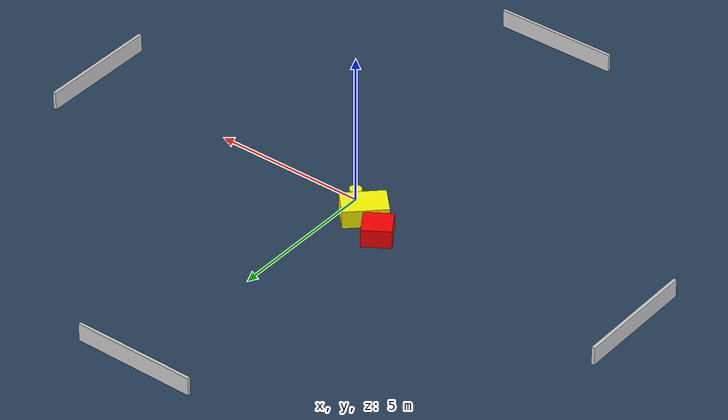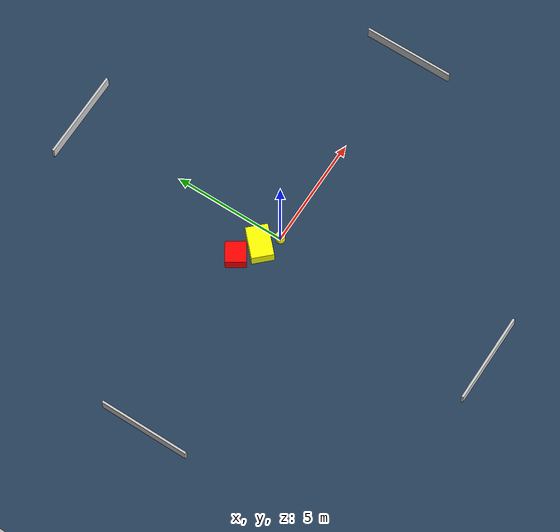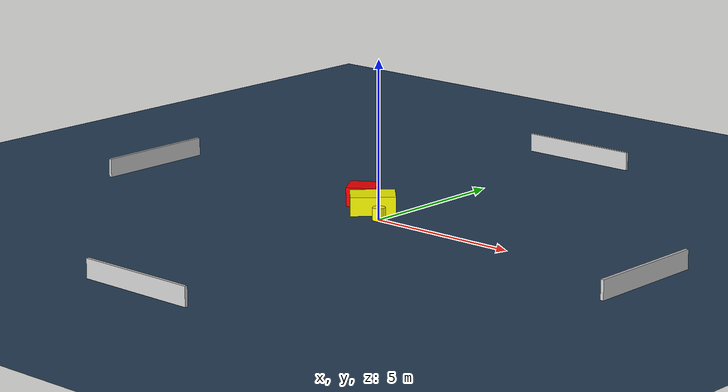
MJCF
<?xml version="1.0" ?>
<mujoco model="generated_environment">
  <option timestep="0.01" integrator="RK4" cone="elliptic"/>
  <default>
    <geom density="1"/>
  </default>
  <asset>
    <texture builtin="gradient" height="3072" name="skybox" rgb1="0.3 0.5 0.7" rgb2="0 0 0" type="skybox" width="512"/>
    <texture builtin="checker" height="300" name="groundplane" rgb1="0.2 0.3 0.4" rgb2="0.1 0.2 0.3" type="2d" width="300"/>
    <material name="groundplane" reflectance="0.2" texrepeat="5 5" texture="groundplane"/>
  </asset>
  <worldbody>
    <light dir="0 0 -1" directional="true" pos="0 0 1.5"/>
    <geom condim="3" friction="0.5 0.005 0.001" material="groundplane" name="floor" pos="0 0 0" size="0 0 0.05" type="plane"/>
    <body name="walls">
      <geom name="wall_1" condim="4" pos="-10.0 0.0 0.3" rgba="0.800000011920929 0.800000011920929 0.800000011920929 1.0" size="0.05 2.0 0.3" type="box"/>
      <geom name="wall_2" condim="4" pos="10.0 0.0 0.3" rgba="0.800000011920929 0.800000011920929 0.800000011920929 1.0" size="0.05 2.0 0.3" type="box"/>
      <geom name="wall_3" condim="4" pos="0.0 -10.0 0.3" rgba="0.800000011920929 0.800000011920929 0.800000011920929 1.0" size="2.0 0.05 0.3" type="box"/>
      <geom name="wall_4" condim="4" pos="0.0 10.0 0.3" rgba="0.800000011920929 0.800000011920929 0.800000011920929 1.0" size="2.0 0.05 0.3" type="box"/>
    </body>
    <body name="robot">
      <joint name="joint_x" type="slide" pos="0 0 0" axis="1 0 0"/>
      <joint name="joint_y" type="slide" pos="0 0 0" axis="0 1 0"/>
      <geom name="robot" type="cylinder" pos="0.0 0.0 0.2" size="0.2 0.2 0.0" mass="5.0" friction="1.0 0.005 0.0001" condim="4" rgba="1.0 1.0 0.0 1.0"/>
    </body>
    <body name="obstacle_1_movable">
      <geom name="obstacle_1_movable" condim="4" pos="-0.7396740442221643 0.5349412777581007 0.3" euler="0 0 223.8806870638306" friction="0.0 0.005 0.001" rgba="1.0 1.0 0.0 1.0" size="0.7059565159082846 0.4823209367147605 0.3" type="box" mass="0.1"/>
      <joint type="free"/>
    </body>
    <body name="obstacle_2_static">
      <geom name="obstacle_2_static" condim="4" pos="-1.6688470355703549 1.1003425932840647 0.3" euler="0 0 32.90395610551781" friction="0.0 0.005 0.001" rgba="1.0 0.0 0.0 1.0" size="0.4599544774287317 0.44681493897857083 0.3" type="box"/>
    </body>
  </worldbody>
  <actuator>
    <motor name="actuator_x" joint="joint_x" gear="1" ctrlrange="-1 1"/>
    <motor name="actuator_y" joint="joint_y" gear="1" ctrlrange="-1 1"/>
  </actuator>
</mujoco>
